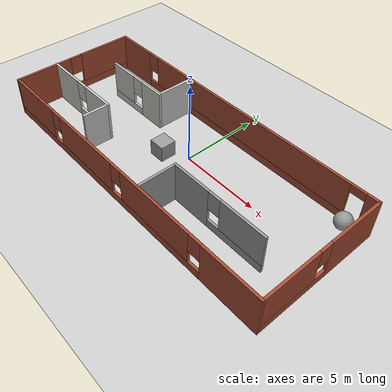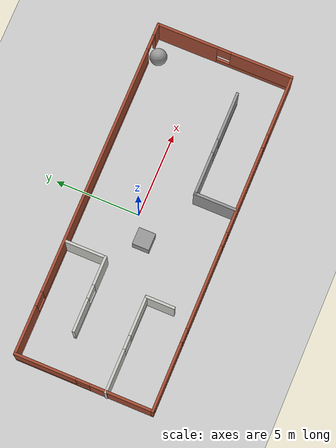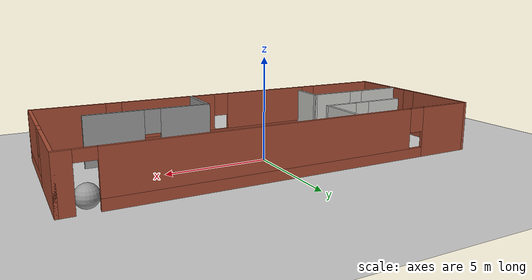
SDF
<sdf version="1.7">
 <world name="default">
  <light name="sun" type="directional">
   <pose>0 0 10 0 -0 0</pose>
   <diffuse>0.8 0.8 0.8 1</diffuse>
   <specular>0.2 0.2 0.2 1</specular>
   <attenuation>
    <range>1000</range>
    <constant>0.9</constant>
    <linear>0.01</linear>
    <quadratic>0.001</quadratic>
   </attenuation>
   <direction>-0.5 0.1 -0.9</direction>
   <spot><inner_angle>0</inner_angle><outer_angle>0</outer_angle><falloff>0</falloff></spot>
  </light>
  <model name="ground_plane">
   <static>1</static>
   <link name="link">
    <collision name="collision">
     <geometry><plane><normal>0 0 1</normal><size>100 100</size></plane></geometry>
     <surface><friction><ode><mu>100</mu><mu2>50</mu2></ode></friction></surface>
    </collision>
    <visual name="visual">
     <cast_shadows>0</cast_shadows>
     <geometry><plane><normal>0 0 1</normal><size>100 100</size></plane></geometry>
     <material>
      <script><uri>file://media/materials/scripts/gazebo.material</uri><name>Gazebo/Grey</name></script>
     </material>
    </visual>
   </link>
  </model>
  <gravity>0 0 -9.8</gravity>
  <magnetic_field>6e-06 2.3e-05 -4.2e-05</magnetic_field>
  <atmosphere type="adiabatic"/>
  <physics type="ode">
   <max_step_size>0.001</max_step_size>
   <real_time_factor>1</real_time_factor>
   <real_time_update_rate>1000</real_time_update_rate>
  </physics>
  <scene><ambient>0.4 0.4 0.4 1</ambient><background>0.7 0.7 0.7 1</background><shadows>1</shadows></scene>
  <audio><device>default</device></audio>
  <spherical_coordinates>
   <surface_model>EARTH_WGS84</surface_model>
   <latitude_deg>0</latitude_deg>
   <longitude_deg>0</longitude_deg>
   <elevation>0</elevation>
   <heading_deg>0</heading_deg>
  </spherical_coordinates>
  <model name="room">
   <pose>-0.020605 -1 0 0 -0 0</pose>
   <link name="Wall_0">
    <pose>0.020605 4 0 0 -0 0</pose>
    <visual name="Wall_0_Visual_0">
     <pose>-8.62891 0 1.25 0 -0 0</pose>
     <geometry><box><size>2.89219 0.15 2.5</size></box></geometry>
     <material>
      <script><uri>file://media/materials/scripts/gazebo.material</uri><name>Gazebo/Bricks</name></script>
      <ambient>1 1 1 1</ambient>
     </material>
     <meta><layer>0</layer></meta>
    </visual>
    <collision name="Wall_0_Collision_0">
     <geometry><box><size>2.89219 0.15 2.5</size></box></geometry>
     <pose>-8.62891 0 1.25 0 -0 0</pose>
    </collision>
    <visual name="Wall_0_Visual_1">
     <pose>9.69527 0 1.25 0 -0 0</pose>
     <geometry><box><size>0.759454 0.15 2.5</size></box></geometry>
     <material>
      <script><uri>file://media/materials/scripts/gazebo.material</uri><name>Gazebo/Bricks</name></script>
      <ambient>1 1 1 1</ambient>
     </material>
     <meta><layer>0</layer></meta>
    </visual>
    <collision name="Wall_0_Collision_1">
     <geometry><box><size>0.759454 0.15 2.5</size></box></geometry>
     <pose>9.69527 0 1.25 0 -0 0</pose>
    </collision>
    <visual name="Wall_0_Visual_2">
     <pose>0.616367 0 0.25 0 -0 0</pose>
     <geometry><box><size>15.5984 0.15 0.5</size></box></geometry>
     <material>
      <script><uri>file://media/materials/scripts/gazebo.material</uri><name>Gazebo/Bricks</name></script>
      <ambient>1 1 1 1</ambient>
     </material>
     <meta><layer>0</layer></meta>
    </visual>
    <collision name="Wall_0_Collision_2">
     <geometry><box><size>15.5984 0.15 0.5</size></box></geometry>
     <pose>0.616367 0 0.25 0 -0 0</pose>
    </collision>
    <visual name="Wall_0_Visual_3">
     <pose>1.01637 0 1.5 0 -0 0</pose>
     <geometry><box><size>14.7984 0.15 2</size></box></geometry>
     <material>
      <script><uri>file://media/materials/scripts/gazebo.material</uri><name>Gazebo/Bricks</name></script>
      <ambient>1 1 1 1</ambient>
     </material>
     <meta><layer>0</layer></meta>
    </visual>
    <collision name="Wall_0_Collision_3">
     <geometry><box><size>14.7984 0.15 2</size></box></geometry>
     <pose>1.01637 0 1.5 0 -0 0</pose>
    </collision>
    <visual name="Wall_0_Visual_4">
     <pose>-6.78281 0 1.9 0 -0 0</pose>
     <geometry><box><size>0.8 0.15 1.2</size></box></geometry>
     <material>
      <script><uri>file://media/materials/scripts/gazebo.material</uri><name>Gazebo/Bricks</name></script>
      <ambient>1 1 1 1</ambient>
     </material>
     <meta><layer>0</layer></meta>
    </visual>
    <collision name="Wall_0_Collision_4">
     <geometry><box><size>0.8 0.15 1.2</size></box></geometry>
     <pose>-6.78281 0 1.9 0 -0 0</pose>
    </collision>
    <visual name="Wall_0_Visual_5">
     <pose>8.86555 0 2.25 0 -0 0</pose>
     <geometry><box><size>0.9 0.15 0.5</size></box></geometry>
     <material>
      <script><uri>file://media/materials/scripts/gazebo.material</uri><name>Gazebo/Bricks</name></script>
      <ambient>1 1 1 1</ambient>
     </material>
     <meta><layer>0</layer></meta>
    </visual>
    <collision name="Wall_0_Collision_5">
     <geometry><box><size>0.9 0.15 0.5</size></box></geometry>
     <pose>8.86555 0 2.25 0 -0 0</pose>
    </collision>
   </link>
   <link name="Wall_1">
    <pose>10.0206 0 0 0 -0 -1.5708</pose>
    <visual name="Wall_1_Visual_0">
     <pose>-2.24855 0 1.25 0 -0 0</pose>
     <geometry><box><size>3.6529 0.15 2.5</size></box></geometry>
     <material>
      <script><uri>file://media/materials/scripts/gazebo.material</uri><name>Gazebo/Bricks</name></script>
      <ambient>1 1 1 1</ambient>
     </material>
     <meta><layer>0</layer></meta>
    </visual>
    <collision name="Wall_1_Collision_0">
     <geometry><box><size>3.6529 0.15 2.5</size></box></geometry>
     <pose>-2.24855 0 1.25 0 -0 0</pose>
    </collision>
    <visual name="Wall_1_Visual_1">
     <pose>1.82645 0 0.25 0 -0 0</pose>
     <geometry><box><size>4.4971 0.15 0.5</size></box></geometry>
     <material>
      <script><uri>file://media/materials/scripts/gazebo.material</uri><name>Gazebo/Bricks</name></script>
      <ambient>1 1 1 1</ambient>
     </material>
     <meta><layer>0</layer></meta>
    </visual>
    <collision name="Wall_1_Collision_1">
     <geometry><box><size>4.4971 0.15 0.5</size></box></geometry>
     <pose>1.82645 0 0.25 0 -0 0</pose>
    </collision>
    <visual name="Wall_1_Visual_2">
     <pose>2.22645 0 1.5 0 -0 0</pose>
     <geometry><box><size>3.6971 0.15 2</size></box></geometry>
     <material>
      <script><uri>file://media/materials/scripts/gazebo.material</uri><name>Gazebo/Bricks</name></script>
      <ambient>1 1 1 1</ambient>
     </material>
     <meta><layer>0</layer></meta>
    </visual>
    <collision name="Wall_1_Collision_2">
     <geometry><box><size>3.6971 0.15 2</size></box></geometry>
     <pose>2.22645 0 1.5 0 -0 0</pose>
    </collision>
    <visual name="Wall_1_Visual_3">
     <pose>-0.022104 0 1.9 0 -0 0</pose>
     <geometry><box><size>0.8 0.15 1.2</size></box></geometry>
     <material>
      <script><uri>file://media/materials/scripts/gazebo.material</uri><name>Gazebo/Bricks</name></script>
      <ambient>1 1 1 1</ambient>
     </material>
     <meta><layer>0</layer></meta>
    </visual>
    <collision name="Wall_1_Collision_3">
     <geometry><box><size>0.8 0.15 1.2</size></box></geometry>
     <pose>-0.022104 0 1.9 0 -0 0</pose>
    </collision>
   </link>
   <link name="Wall_10">
    <pose>-5.45756 1.57414 0 0 -0 3.14159</pose>
    <visual name="Wall_10_Visual_0">
     <pose>-1.38671 0 1.25 0 -0 0</pose>
     <geometry><box><size>1.72658 0.15 2.5</size></box></geometry>
     <material>
      <script><uri>file://media/materials/scripts/gazebo.material</uri><name>Gazebo/CeilingTiled</name></script>
      <ambient>1 1 1 1</ambient>
     </material>
     <meta><layer>0</layer></meta>
    </visual>
    <collision name="Wall_10_Collision_0">
     <geometry><box><size>1.72658 0.15 2.5</size></box></geometry>
     <pose>-1.38671 0 1.25 0 -0 0</pose>
    </collision>
    <visual name="Wall_10_Visual_1">
     <pose>0.863292 0 0.25 0 -0 0</pose>
     <geometry><box><size>2.77342 0.15 0.5</size></box></geometry>
     <material>
      <script><uri>file://media/materials/scripts/gazebo.material</uri><name>Gazebo/CeilingTiled</name></script>
      <ambient>1 1 1 1</ambient>
     </material>
     <meta><layer>0</layer></meta>
    </visual>
    <collision name="Wall_10_Collision_1">
     <geometry><box><size>2.77342 0.15 0.5</size></box></geometry>
     <pose>0.863292 0 0.25 0 -0 0</pose>
    </collision>
    <visual name="Wall_10_Visual_2">
     <pose>1.26329 0 1.5 0 -0 0</pose>
     <geometry><box><size>1.97342 0.15 2</size></box></geometry>
     <material>
      <script><uri>file://media/materials/scripts/gazebo.material</uri><name>Gazebo/CeilingTiled</name></script>
      <ambient>1 1 1 1</ambient>
     </material>
     <meta><layer>0</layer></meta>
    </visual>
    <collision name="Wall_10_Collision_2">
     <geometry><box><size>1.97342 0.15 2</size></box></geometry>
     <pose>1.26329 0 1.5 0 -0 0</pose>
    </collision>
    <visual name="Wall_10_Visual_3">
     <pose>-0.123416 0 1.9 0 -0 0</pose>
     <geometry><box><size>0.8 0.15 1.2</size></box></geometry>
     <material>
      <script><uri>file://media/materials/scripts/gazebo.material</uri><name>Gazebo/CeilingTiled</name></script>
      <ambient>1 1 1 1</ambient>
     </material>
     <meta><layer>0</layer></meta>
    </visual>
    <collision name="Wall_10_Collision_3">
     <geometry><box><size>0.8 0.15 1.2</size></box></geometry>
     <pose>-0.123416 0 1.9 0 -0 0</pose>
    </collision>
   </link>
   <link name="Wall_12">
    <pose>-7.22061 -1.30539 0 0 -0 0</pose>
    <visual name="Wall_12_Visual_0">
     <pose>-1.58932 0 1.25 0 -0 0</pose>
     <geometry><box><size>2.57135 0.15 2.5</size></box></geometry>
     <material>
      <script><uri>file://media/materials/scripts/gazebo.material</uri><name>Gazebo/CeilingTiled</name></script>
      <ambient>1 1 1 1</ambient>
     </material>
     <meta><layer>0</layer></meta>
    </visual>
    <collision name="Wall_12_Collision_0">
     <geometry><box><size>2.57135 0.15 2.5</size></box></geometry>
     <pose>-1.58932 0 1.25 0 -0 0</pose>
    </collision>
    <visual name="Wall_12_Visual_1">
     <pose>1.28568 0 0.25 0 -0 0</pose>
     <geometry><box><size>3.17865 0.15 0.5</size></box></geometry>
     <material>
      <script><uri>file://media/materials/scripts/gazebo.material</uri><name>Gazebo/CeilingTiled</name></script>
      <ambient>1 1 1 1</ambient>
     </material>
     <meta><layer>0</layer></meta>
    </visual>
    <collision name="Wall_12_Collision_1">
     <geometry><box><size>3.17865 0.15 0.5</size></box></geometry>
     <pose>1.28568 0 0.25 0 -0 0</pose>
    </collision>
    <visual name="Wall_12_Visual_2">
     <pose>1.68568 0 1.5 0 -0 0</pose>
     <geometry><box><size>2.37865 0.15 2</size></box></geometry>
     <material>
      <script><uri>file://media/materials/scripts/gazebo.material</uri><name>Gazebo/CeilingTiled</name></script>
      <ambient>1 1 1 1</ambient>
     </material>
     <meta><layer>0</layer></meta>
    </visual>
    <collision name="Wall_12_Collision_2">
     <geometry><box><size>2.37865 0.15 2</size></box></geometry>
     <pose>1.68568 0 1.5 0 -0 0</pose>
    </collision>
    <visual name="Wall_12_Visual_3">
     <pose>0.096354 0 1.9 0 -0 0</pose>
     <geometry><box><size>0.8 0.15 1.2</size></box></geometry>
     <material>
      <script><uri>file://media/materials/scripts/gazebo.material</uri><name>Gazebo/CeilingTiled</name></script>
      <ambient>1 1 1 1</ambient>
     </material>
     <meta><layer>0</layer></meta>
    </visual>
    <collision name="Wall_12_Collision_3">
     <geometry><box><size>0.8 0.15 1.2</size></box></geometry>
     <pose>0.096354 0 1.9 0 -0 0</pose>
    </collision>
   </link>
   <link name="Wall_13">
    <collision name="Wall_13_Collision">
     <geometry><box><size>1.75 0.15 2.5</size></box></geometry>
     <pose>0 0 1.25 0 -0 0</pose>
    </collision>
    <visual name="Wall_13_Visual">
     <pose>0 0 1.25 0 -0 0</pose>
     <geometry><box><size>1.75 0.15 2.5</size></box></geometry>
     <material>
      <script><uri>file://media/materials/scripts/gazebo.material</uri><name>Gazebo/CeilingTiled</name></script>
      <ambient>1 1 1 1</ambient>
     </material>
     <meta><layer>0</layer></meta>
    </visual>
    <pose>-4.42061 -2.10539 0 0 -0 -1.5708</pose>
   </link>
   <link name="Wall_15">
    <collision name="Wall_15_Collision">
     <geometry><box><size>2.5 0.15 2.5</size></box></geometry>
     <pose>0 0 1.25 0 -0 0</pose>
    </collision>
    <visual name="Wall_15_Visual">
     <pose>0 0 1.25 0 -0 0</pose>
     <geometry><box><size>2.5 0.15 2.5</size></box></geometry>
     <material>
      <script><uri>file://media/materials/scripts/gazebo.material</uri><name>Gazebo/Grey</name></script>
      <ambient>1 1 1 1</ambient>
     </material>
     <meta><layer>0</layer></meta>
    </visual>
    <pose>1.86651 -2.74516 0 0 -0 1.5708</pose>
   </link>
   <link name="Wall_16">
    <pose>4.91651 -1.57016 0 0 -0 0</pose>
    <visual name="Wall_16_Visual_0">
     <pose>-1.83932 0 1.25 0 -0 0</pose>
     <geometry><box><size>2.57135 0.15 2.5</size></box></geometry>
     <material>
      <script><uri>file://media/materials/scripts/gazebo.material</uri><name>Gazebo/Grey</name></script>
      <ambient>1 1 1 1</ambient>
     </material>
     <meta><layer>0</layer></meta>
    </visual>
    <collision name="Wall_16_Collision_0">
     <geometry><box><size>2.57135 0.15 2.5</size></box></geometry>
     <pose>-1.83932 0 1.25 0 -0 0</pose>
    </collision>
    <visual name="Wall_16_Visual_1">
     <pose>1.28568 0 0.25 0 -0 0</pose>
     <geometry><box><size>3.67865 0.15 0.5</size></box></geometry>
     <material>
      <script><uri>file://media/materials/scripts/gazebo.material</uri><name>Gazebo/Grey</name></script>
      <ambient>1 1 1 1</ambient>
     </material>
     <meta><layer>0</layer></meta>
    </visual>
    <collision name="Wall_16_Collision_1">
     <geometry><box><size>3.67865 0.15 0.5</size></box></geometry>
     <pose>1.28568 0 0.25 0 -0 0</pose>
    </collision>
    <visual name="Wall_16_Visual_2">
     <pose>1.68568 0 1.5 0 -0 0</pose>
     <geometry><box><size>2.87865 0.15 2</size></box></geometry>
     <material>
      <script><uri>file://media/materials/scripts/gazebo.material</uri><name>Gazebo/Grey</name></script>
      <ambient>1 1 1 1</ambient>
     </material>
     <meta><layer>0</layer></meta>
    </visual>
    <collision name="Wall_16_Collision_2">
     <geometry><box><size>2.87865 0.15 2</size></box></geometry>
     <pose>1.68568 0 1.5 0 -0 0</pose>
    </collision>
    <visual name="Wall_16_Visual_3">
     <pose>-0.153646 0 1.9 0 -0 0</pose>
     <geometry><box><size>0.8 0.15 1.2</size></box></geometry>
     <material>
      <script><uri>file://media/materials/scripts/gazebo.material</uri><name>Gazebo/Grey</name></script>
      <ambient>1 1 1 1</ambient>
     </material>
     <meta><layer>0</layer></meta>
    </visual>
    <collision name="Wall_16_Collision_3">
     <geometry><box><size>0.8 0.15 1.2</size></box></geometry>
     <pose>-0.153646 0 1.9 0 -0 0</pose>
    </collision>
   </link>
   <link name="Wall_2">
    <pose>0.020605 -4 0 0 -0 3.14159</pose>
    <visual name="Wall_2_Visual_0">
     <pose>-8.25227 0 1.25 0 -0 0</pose>
     <geometry><box><size>3.64547 0.15 2.5</size></box></geometry>
     <material>
      <script><uri>file://media/materials/scripts/gazebo.material</uri><name>Gazebo/Bricks</name></script>
      <ambient>1 1 1 1</ambient>
     </material>
     <meta><layer>0</layer></meta>
    </visual>
    <collision name="Wall_2_Collision_0">
     <geometry><box><size>3.64547 0.15 2.5</size></box></geometry>
     <pose>-8.25227 0 1.25 0 -0 0</pose>
    </collision>
    <visual name="Wall_2_Visual_1">
     <pose>1.82273 0 0.25 0 -0 0</pose>
     <geometry><box><size>16.5045 0.15 0.5</size></box></geometry>
     <material>
      <script><uri>file://media/materials/scripts/gazebo.material</uri><name>Gazebo/Bricks</name></script>
      <ambient>1 1 1 1</ambient>
     </material>
     <meta><layer>0</layer></meta>
    </visual>
    <collision name="Wall_2_Collision_1">
     <geometry><box><size>16.5045 0.15 0.5</size></box></geometry>
     <pose>1.82273 0 0.25 0 -0 0</pose>
    </collision>
    <visual name="Wall_2_Visual_2">
     <pose>-3.06278 0 1.5 0 -0 0</pose>
     <geometry><box><size>5.1335 0.15 2</size></box></geometry>
     <material>
      <script><uri>file://media/materials/scripts/gazebo.material</uri><name>Gazebo/Bricks</name></script>
      <ambient>1 1 1 1</ambient>
     </material>
     <meta><layer>0</layer></meta>
    </visual>
    <collision name="Wall_2_Collision_2">
     <geometry><box><size>5.1335 0.15 2</size></box></geometry>
     <pose>-3.06278 0 1.5 0 -0 0</pose>
    </collision>
    <visual name="Wall_2_Visual_3">
     <pose>2.7601 0 1.5 0 -0 0</pose>
     <geometry><box><size>4.91225 0.15 2</size></box></geometry>
     <material>
      <script><uri>file://media/materials/scripts/gazebo.material</uri><name>Gazebo/Bricks</name></script>
      <ambient>1 1 1 1</ambient>
     </material>
     <meta><layer>0</layer></meta>
    </visual>
    <collision name="Wall_2_Collision_3">
     <geometry><box><size>4.91225 0.15 2</size></box></geometry>
     <pose>2.7601 0 1.5 0 -0 0</pose>
    </collision>
    <visual name="Wall_2_Visual_4">
     <pose>8.04561 0 1.5 0 -0 0</pose>
     <geometry><box><size>4.05877 0.15 2</size></box></geometry>
     <material>
      <script><uri>file://media/materials/scripts/gazebo.material</uri><name>Gazebo/Bricks</name></script>
      <ambient>1 1 1 1</ambient>
     </material>
     <meta><layer>0</layer></meta>
    </visual>
    <collision name="Wall_2_Collision_4">
     <geometry><box><size>4.05877 0.15 2</size></box></geometry>
     <pose>8.04561 0 1.5 0 -0 0</pose>
    </collision>
    <visual name="Wall_2_Visual_5">
     <pose>-6.02953 0 1.9 0 -0 0</pose>
     <geometry><box><size>0.8 0.15 1.2</size></box></geometry>
     <material>
      <script><uri>file://media/materials/scripts/gazebo.material</uri><name>Gazebo/Bricks</name></script>
      <ambient>1 1 1 1</ambient>
     </material>
     <meta><layer>0</layer></meta>
    </visual>
    <collision name="Wall_2_Collision_5">
     <geometry><box><size>0.8 0.15 1.2</size></box></geometry>
     <pose>-6.02953 0 1.9 0 -0 0</pose>
    </collision>
    <visual name="Wall_2_Visual_6">
     <pose>-0.096029 0 1.9 0 -0 0</pose>
     <geometry><box><size>0.8 0.15 1.2</size></box></geometry>
     <material>
      <script><uri>file://media/materials/scripts/gazebo.material</uri><name>Gazebo/Bricks</name></script>
      <ambient>1 1 1 1</ambient>
     </material>
     <meta><layer>0</layer></meta>
    </visual>
    <collision name="Wall_2_Collision_6">
     <geometry><box><size>0.8 0.15 1.2</size></box></geometry>
     <pose>-0.096029 0 1.9 0 -0 0</pose>
    </collision>
    <visual name="Wall_2_Visual_7">
     <pose>5.61623 0 1.9 0 -0 0</pose>
     <geometry><box><size>0.8 0.15 1.2</size></box></geometry>
     <material>
      <script><uri>file://media/materials/scripts/gazebo.material</uri><name>Gazebo/Bricks</name></script>
      <ambient>1 1 1 1</ambient>
     </material>
     <meta><layer>0</layer></meta>
    </visual>
    <collision name="Wall_2_Collision_7">
     <geometry><box><size>0.8 0.15 1.2</size></box></geometry>
     <pose>5.61623 0 1.9 0 -0 0</pose>
    </collision>
   </link>
   <link name="Wall_7">
    <pose>-9.9794 0 0 0 -0 1.5708</pose>
    <visual name="Wall_7_Visual_0">
     <pose>-2.21662 0 1.25 0 -0 0</pose>
     <geometry><box><size>3.71767 0.15 2.5</size></box></geometry>
     <material>
      <script><uri>file://media/materials/scripts/gazebo.material</uri><name>Gazebo/Bricks</name></script>
      <ambient>1 1 1 1</ambient>
     </material>
     <meta><layer>0</layer></meta>
    </visual>
    <collision name="Wall_7_Collision_0">
     <geometry><box><size>3.71767 0.15 2.5</size></box></geometry>
     <pose>-2.21662 0 1.25 0 -0 0</pose>
    </collision>
    <visual name="Wall_7_Visual_1">
     <pose>1.85883 0 0.25 0 -0 0</pose>
     <geometry><box><size>4.43323 0.15 0.5</size></box></geometry>
     <material>
      <script><uri>file://media/materials/scripts/gazebo.material</uri><name>Gazebo/Bricks</name></script>
      <ambient>1 1 1 1</ambient>
     </material>
     <meta><layer>0</layer></meta>
    </visual>
    <collision name="Wall_7_Collision_1">
     <geometry><box><size>4.43323 0.15 0.5</size></box></geometry>
     <pose>1.85883 0 0.25 0 -0 0</pose>
    </collision>
    <visual name="Wall_7_Visual_2">
     <pose>2.25883 0 1.5 0 -0 0</pose>
     <geometry><box><size>3.63323 0.15 2</size></box></geometry>
     <material>
      <script><uri>file://media/materials/scripts/gazebo.material</uri><name>Gazebo/Bricks</name></script>
      <ambient>1 1 1 1</ambient>
     </material>
     <meta><layer>0</layer></meta>
    </visual>
    <collision name="Wall_7_Collision_2">
     <geometry><box><size>3.63323 0.15 2</size></box></geometry>
     <pose>2.25883 0 1.5 0 -0 0</pose>
    </collision>
    <visual name="Wall_7_Visual_3">
     <pose>0.042217 0 1.9 0 -0 0</pose>
     <geometry><box><size>0.8 0.15 1.2</size></box></geometry>
     <material>
      <script><uri>file://media/materials/scripts/gazebo.material</uri><name>Gazebo/Bricks</name></script>
      <ambient>1 1 1 1</ambient>
     </material>
     <meta><layer>0</layer></meta>
    </visual>
    <collision name="Wall_7_Collision_3">
     <geometry><box><size>0.8 0.15 1.2</size></box></geometry>
     <pose>0.042217 0 1.9 0 -0 0</pose>
    </collision>
   </link>
   <link name="Wall_9">
    <collision name="Wall_9_Collision">
     <geometry><box><size>2.5 0.15 2.5</size></box></geometry>
     <pose>0 0 1.25 0 -0 0</pose>
    </collision>
    <visual name="Wall_9_Visual">
     <pose>0 0 1.25 0 -0 0</pose>
     <geometry><box><size>2.5 0.15 2.5</size></box></geometry>
     <material>
      <script><uri>file://media/materials/scripts/gazebo.material</uri><name>Gazebo/CeilingTiled</name></script>
      <ambient>1 1 1 1</ambient>
     </material>
     <meta><layer>0</layer></meta>
    </visual>
    <pose>-3.28256 2.74914 0 0 -0 -1.5708</pose>
   </link>
   <static>1</static>
  </model>
  <model name="unit_box">
   <pose>-1.29359 -0.837745 0.5 0 -0 0</pose>
   <link name="link">
    <inertial>
     <mass>1</mass>
     <inertia>
      <ixx>0.166667</ixx>
      <ixy>0</ixy>
      <ixz>0</ixz>
      <iyy>0.166667</iyy>
      <iyz>0</iyz>
      <izz>0.166667</izz>
     </inertia>
    </inertial>
    <collision name="collision"><geometry><box><size>1 1 1</size></box></geometry></collision>
    <visual name="visual">
     <geometry><box><size>1 1 1</size></box></geometry>
     <material>
      <script><name>Gazebo/Grey</name><uri>file://media/materials/scripts/gazebo.material</uri></script>
     </material>
    </visual>
   </link>
  </model>
  <model name="unit_sphere">
   <pose>8.80478 2.49738 0.5 0 -0 0</pose>
   <link name="link">
    <inertial>
     <mass>1</mass>
     <inertia><ixx>0.1</ixx><ixy>0</ixy><ixz>0</ixz><iyy>0.1</iyy><iyz>0</iyz><izz>0.1</izz></inertia>
    </inertial>
    <collision name="collision"><geometry><sphere><radius>0.5</radius></sphere></geometry></collision>
    <visual name="visual">
     <geometry><sphere><radius>0.5</radius></sphere></geometry>
     <material>
      <script><name>Gazebo/Grey</name><uri>file://media/materials/scripts/gazebo.material</uri></script>
     </material>
    </visual>
   </link>
  </model>
  <plugin filename="libgazebo_ros_factory.so" name="gazebo_ros_factory"/>
 </world>
</sdf>
